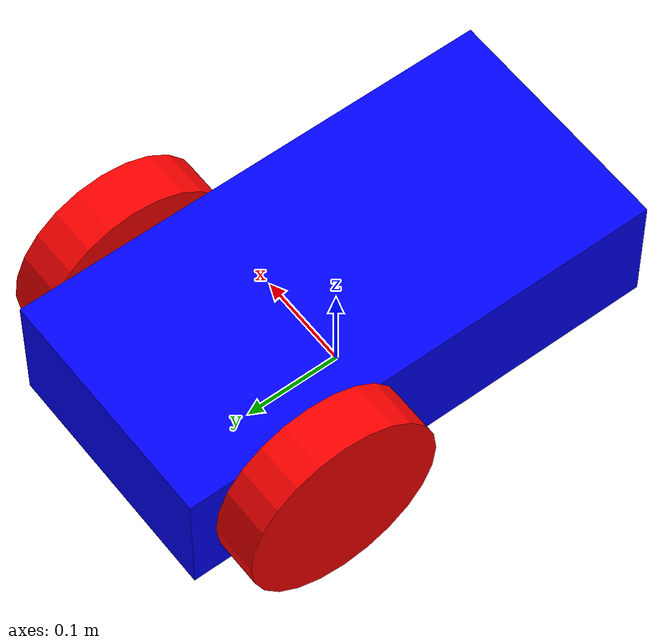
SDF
<?xml version="1.0" ?>
<sdf version="1.7">
    <model name='vehicle_blue_scaled' canonical_link='chassis'>
        <pose>0 0 0 0 0 0</pose>

        <!--chassis-->
        <link name='chassis'>
            <pose relative_to='__model__'>0 0 0.1 0 0 -1.5708</pose>
            <inertial>
                <mass>15.0</mass>
                <inertia>
                    <ixx>1.05</ixx>
                    <iyy>1.05</iyy>
                    <izz>1.08</izz>
                </inertia>
            </inertial>

            <visual name='visual'>
                <geometry>
                    <box>
                        <size>0.5 0.25 0.125</size>
                    </box>
                </geometry>
                <material>
                    <ambient>0 0 1 1</ambient>
                    <diffuse>0 0 1 1</diffuse>
                    <specular>0 0 1 1</specular>
                </material>
            </visual>
            <collision name='collision'>
                <geometry>
                    <box>
                        <size>0.5 0.25 0.125</size>
                    </box>
                </geometry>
            </collision>
        </link>

        <!--Left wheel-->
        <link name='left_wheel'>
            <pose relative_to="chassis">-0.125 0.15 0 -1.5707 0 0</pose>
            <inertial>
                <mass>0.016</mass>
                <inertia>
                    <ixx>0.0007</ixx>
                    <ixy>0</ixy>
                    <ixz>0</ixz>
                    <iyy>0.0007</iyy>
                    <iyz>0</iyz>
                    <izz>0.0013</izz>
                </inertia>
            </inertial>
            <visual name='visual'>
                <geometry>
                    <cylinder>
                        <radius>0.1</radius>
                        <length>0.05</length>
                    </cylinder>
                </geometry>
                <material>
                    <ambient>1 0 0 1</ambient>
                    <diffuse>1 0 0 1</diffuse>
                    <specular>1 0 0 1</specular>
                </material>
            </visual>
            <collision name='collision'>
                <geometry>
                    <cylinder>
                        <radius>0.1</radius>
                        <length>0.05</length>
                    </cylinder>
                </geometry>
                <surface>
                    <friction>
                        <ode>
                            <mu>5.0</mu>
                            <mu2>5.0</mu2>
                        </ode>
                    </friction>
                </surface>
            </collision>
        </link>

        <!--Right wheel-->
        <link name='right_wheel'>
            <pose relative_to="chassis">-0.125 -0.15 0 -1.5707 0 0</pose>
            <inertial>
                <mass>0.016</mass>
                <inertia>
                    <ixx>0.0007</ixx>
                    <ixy>0</ixy>
                    <ixz>0</ixz>
                    <iyy>0.0007</iyy>
                    <iyz>0</iyz>
                    <izz>0.0013</izz>
                </inertia>
            </inertial>
            <visual name='visual'>
                <geometry>
                    <cylinder>
                        <radius>0.1</radius>
                        <length>0.05</length>
                    </cylinder>
                </geometry>
                <material>
                    <ambient>1 0 0 1</ambient>
                    <diffuse>1 0 0 1</diffuse>
                    <specular>1 0 0 1</specular>
                </material>
            </visual>
            <collision name='collision'>
                <geometry>
                    <cylinder>
                        <radius>0.1</radius>
                        <length>0.05</length>
                    </cylinder>
                </geometry>
                <surface>
                    <friction>
                        <ode>
                            <mu>5.0</mu>
                            <mu2>5.0</mu2>
                        </ode>
                    </friction>
                </surface>
            </collision>
        </link>

        <!--Caster wheel-->
        <frame name="caster_frame" attached_to='chassis'>
            <pose>0.2 0 -.05 0 0 0</pose>
        </frame>

        <link name='caster'>
            <pose relative_to='caster_frame'/>
            <inertial>
                <mass>0.0004</mass>
                <inertia>
                    <ixx>2.5e-4</ixx>
                    <ixy>0</ixy>
                    <ixz>0</ixz>
                    <iyy>2.5e-4</iyy>
                    <iyz>0</iyz>
                    <izz>2.5e-4</izz>
                </inertia>
            </inertial>
            <visual name='visual'>
                <geometry>
                    <box>
                        <size>0.1 0.1 0.1</size>
                    </box>
                </geometry>
                <material>
                    <ambient>1 0 0 1</ambient>
                    <diffuse>1 0 0 1</diffuse>
                    <specular>1 0 0 1</specular>
                </material>
            </visual>
            <collision name='collision'>
                <geometry>
                    <box>
                        <size>0.1 0.1 0.1</size>
                    </box>
                </geometry>
                <surface>
                    <friction>
                        <ode>
                            <mu>0.0</mu>
                            <mu2>0.0</mu2>
                        </ode>
                    </friction>
                </surface>
            </collision>
        </link>

        <!--Joints-->
        <joint name='left_wheel_joint' type='fixed'>
            <pose relative_to='left_wheel'/>
            <parent>chassis</parent>
            <child>left_wheel</child>
            <axis>
                <xyz expressed_in='__model__'>1 0 0</xyz>
                <limit>
                    <lower>-1.79769e+308</lower>
                    <upper>1.79769e+308</upper>
                </limit>
            </axis>
        </joint>

        <joint name='right_wheel_joint' type='fixed'>
            <pose relative_to='right_wheel'/>
            <parent>chassis</parent>
            <child>right_wheel</child>
            <axis>
                <xyz expressed_in='__model__'>1 0 0</xyz>
                <limit>
                    <lower>-1.79769e+308</lower>
                    <upper>1.79769e+308</upper>
                </limit>
            </axis>
        </joint>

        <joint name='caster_wheel' type='fixed'>
            <parent>chassis</parent>
            <child>caster</child>
        </joint>
    </model>
</sdf>
